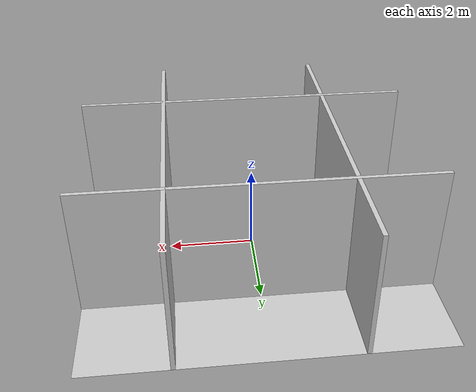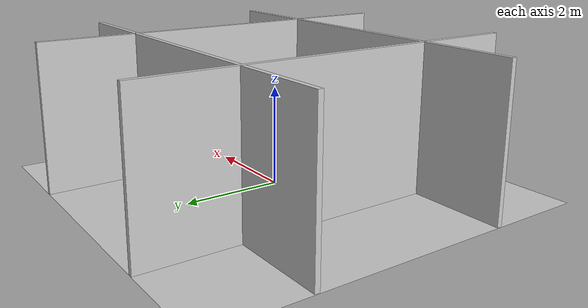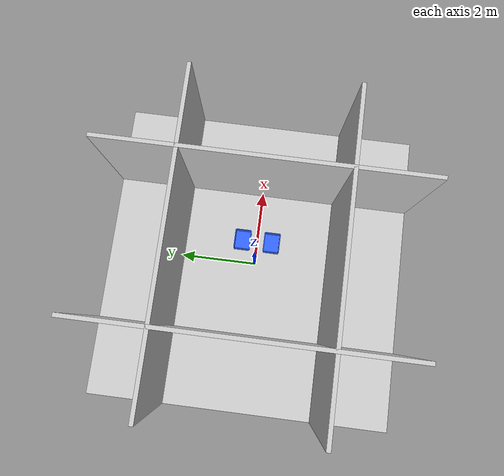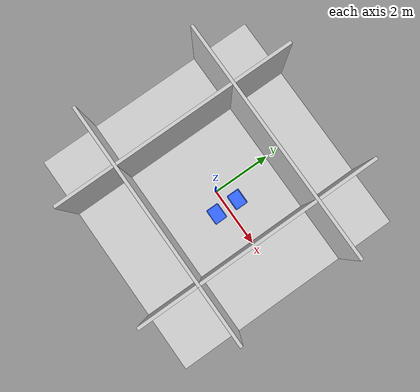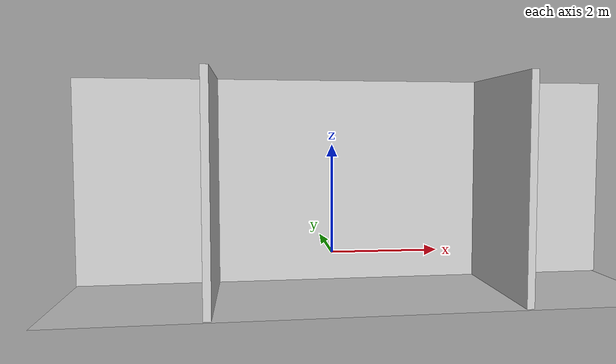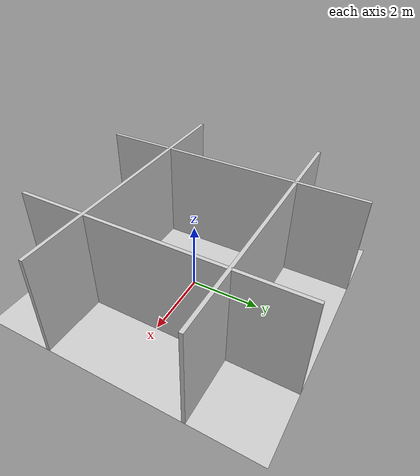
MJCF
<mujoco model="robotic_cell_base">
  <asset>
    <!-- Floor & walls textures -->
    <texture builtin="flat" height="512" width="512" rgb1="0.8 0.8 0.8" name="tex-floor"/>
    <texture file="../textures/light-gray-plaster.png" type="2d" name="tex-wall"/>

    <material name="floor_mat" texture="tex-floor" texrepeat="4 4" reflectance="0.01"/>
    <material name="wall_mat" texture="tex-wall" texrepeat="3 3" specular="0.1" shininess="0.1"/>

    <material name="blue-bin" rgba="0.2 0.4 1 1" specular="0.3" shininess="0.1" reflectance="0.1"/>
  </asset>

  <worldbody>
    <!-- Floor -->
    <geom name="floor" type="plane" pos="0 0 0" size="4 4 0.1" material="floor_mat"/>

    <!-- Safety walls (visual-only) -->
    <geom type="box" size="4 0.05 1.5" pos="0 -2 1.5" material="wall_mat" contype="0" conaffinity="0"/>
    <geom type="box" size="4 0.05 1.5" pos="0 2 1.5" material="wall_mat" contype="0" conaffinity="0"/>
    <geom type="box" size="0.05 4 1.5" pos="-2 0 1.5" material="wall_mat" contype="0" conaffinity="0"/>
    <geom type="box" size="0.05 4 1.5" pos="2 0 1.5" material="wall_mat" contype="0" conaffinity="0"/>

    <!-- Bin 1 -->
    <body name="bin1" pos="0.6 -0.4 0.05">
      <geom name="bin1_base" type="box" size="0.25 0.2 0.02" pos="0 0 0.02" material="blue-bin"/>
      <geom name="bin1_wall_back" type="box" size="0.25 0.01 0.1" pos="0 0.21 0.12" material="blue-bin"/>
      <geom name="bin1_wall_front" type="box" size="0.25 0.01 0.1" pos="0 -0.21 0.12" material="blue-bin"/>
      <geom name="bin1_wall_left" type="box" size="0.01 0.2 0.1" pos="-0.26 0 0.12" material="blue-bin"/>
      <geom name="bin1_wall_right" type="box" size="0.01 0.2 0.1" pos="0.26 0 0.12" material="blue-bin"/>
    </body>

    <!-- Bin 2 -->
    <body name="bin2" pos="0.6 0.4 0.05">
      <geom name="bin2_base" type="box" size="0.25 0.2 0.02" pos="0 0 0.02" material="blue-bin"/>
      <geom name="bin2_wall_back" type="box" size="0.25 0.01 0.1" pos="0 0.21 0.12" material="blue-bin"/>
      <geom name="bin2_wall_front" type="box" size="0.25 0.01 0.1" pos="0 -0.21 0.12" material="blue-bin"/>
      <geom name="bin2_wall_left" type="box" size="0.01 0.2 0.1" pos="-0.26 0 0.12" material="blue-bin"/>
      <geom name="bin2_wall_right" type="box" size="0.01 0.2 0.1" pos="0.26 0 0.12" material="blue-bin"/>
    </body>

    <!-- Light -->
    <light pos="1.5 1.5 2.5" dir="-0.3 -0.3 -1" directional="true" diffuse="0.8 0.8 0.9" specular="0.3 0.3 0.3"/>

    <!-- Cameras -->
    <camera name="top_view" mode="fixed" pos="1.2 0 2.5" quat="0.707 0 0 0.707"/>
    <camera name="diagonal_view" mode="fixed" pos="1.5 -1.5 1.5" quat="0.6 0.4 0.4 0.6"/>
  </worldbody>
</mujoco>
